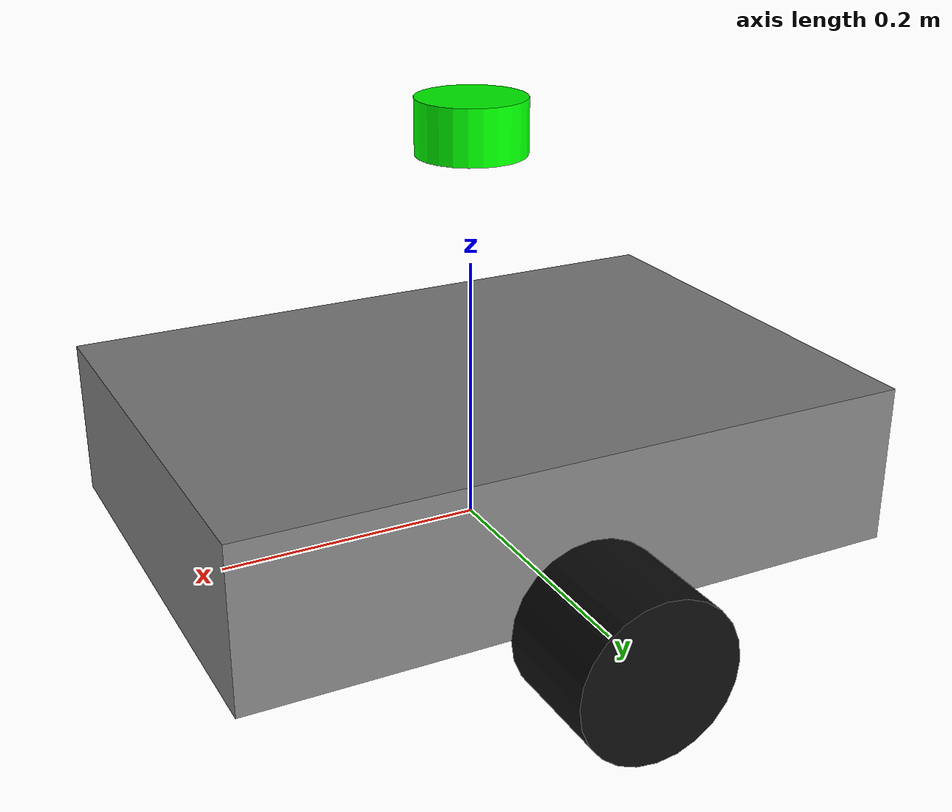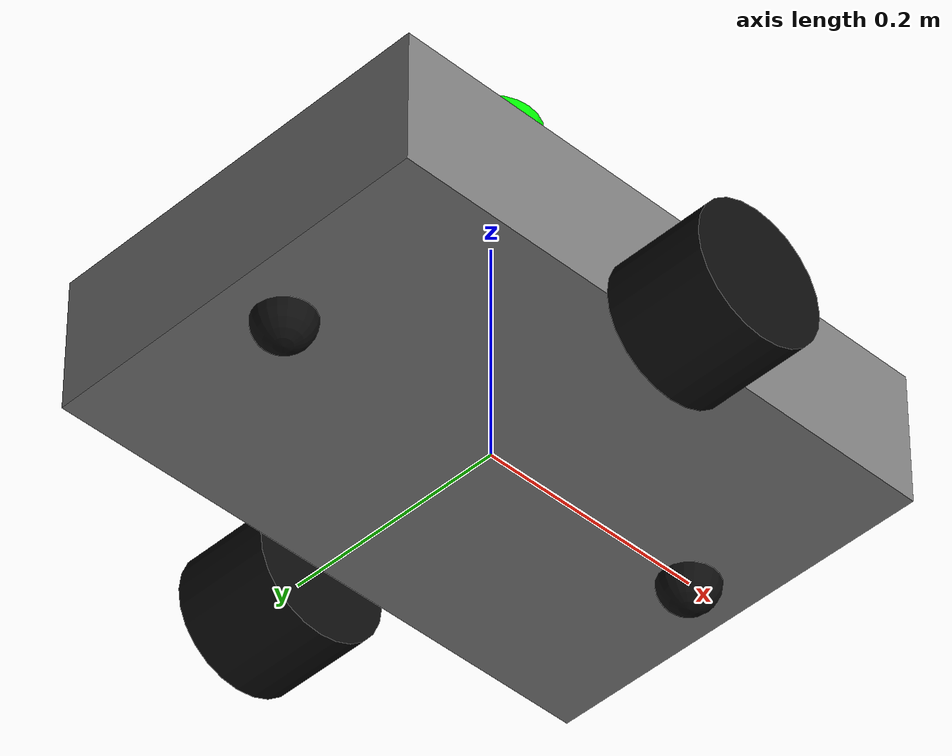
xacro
<?xml version="1.0"?>
<!--
  SLAM 机器人 URDF（借鉴 oomwoo-one 模块化设计）
  - params.xacro：参数
  - inertial.xacro：惯性宏
  - materials.xacro：材质
  - wheels.xacro：底盘 / 轮子宏
  - sensors.xacro：传感器宏
-->
<robot xmlns:xacro="http://ros.org/wiki/xacro" name="slam_robot">

  <!-- 加载子模块 -->
  <xacro:include filename="$(find indoor_slam_67m)/urdf/xacro/params.xacro"/>
  <xacro:include filename="$(find indoor_slam_67m)/urdf/xacro/materials.xacro"/>
  <xacro:include filename="$(find indoor_slam_67m)/urdf/xacro/inertial.xacro"/>
  <xacro:include filename="$(find indoor_slam_67m)/urdf/xacro/wheels.xacro"/>
  <xacro:include filename="$(find indoor_slam_67m)/urdf/xacro/sensors.xacro"/>

  <!-- 底盘主体 -->
  <xacro:base_body base_length="${base_length}"
                   base_width="${base_width}"
                   base_height="${base_height}"
                   base_mass="${base_mass}"/>

  <!-- 驱动轮 -->
  <xacro:drive_wheel side="left"  wheel_radius="${wheel_radius}" wheel_mass="${wheel_mass}" y_position="${base_width/2 + base_width/8}"/>
  <xacro:drive_wheel side="right" wheel_radius="${wheel_radius}" wheel_mass="${wheel_mass}" y_position="${-(base_width/2 + base_width/8)}"/>

  <!-- 万向轮（前 + 后） -->
  <xacro:caster_wheel position="front" caster_radius="${caster_radius}" x_position="${base_length/2 - 0.05}"/>
  <xacro:caster_wheel position="back"  caster_radius="${caster_radius}" x_position="${-(base_length/2 - 0.05)}"/>

  <!-- 传感器 -->
  <xacro:laser_sensor x="0" y="0" z="${laser_height}"/>
  <xacro:imu_sensor   x="0" y="0" z="${imu_height}"/>

</robot>

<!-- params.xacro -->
<!--
  所有几何 / 物理参数集中在这里
  借鉴 oomwoo-one 的设计
-->
<robot xmlns:xacro="http://ros.org/wiki/xacro">

  <!-- ===== 底盘尺寸 ===== -->
  <xacro:property name="base_length" value="0.50"/>      <!-- 底盘长 50 cm -->
  <xacro:property name="base_width" value="0.35"/>       <!-- 底盘宽 35 cm -->
  <xacro:property name="base_height" value="0.12"/>      <!-- 底盘高 12 cm -->
  <xacro:property name="base_mass" value="3.0"/>          <!-- 3 kg -->

  <!-- ===== 驱动轮 ===== -->
  <xacro:property name="wheel_radius" value="0.06"/>     <!-- 6 cm -->
  <xacro:property name="wheel_width" value="0.04"/>      <!-- 4 cm -->
  <xacro:property name="wheel_mass" value="0.2"/>

  <!-- ===== 万向轮 ===== -->
  <xacro:property name="caster_radius" value="0.025"/>   <!-- 2.5 cm -->

  <!-- ===== 雷达 / IMU 安装位置 ===== -->
  <xacro:property name="laser_height" value="0.30"/>     <!-- 雷达离地 30 cm -->
  <xacro:property name="imu_height" value="0.10"/>       <!-- IMU 离地 10 cm -->

  <!-- ===== bumper / safety 物理位置 ===== -->
  <xacro:property name="bumper_height" value="0.05"/>    <!-- bumper 高度 -->
  <xacro:property name="bumper_offset" value="${base_length/2 + 0.005}"/> <!-- bumper 在前/后底盘边缘 -->

  <!-- ===== 物理常量 ===== -->
  <xacro:property name="PI" value="3.14159265359"/>

</robot>

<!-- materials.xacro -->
<!-- 材质定义 -->
<robot xmlns:xacro="http://ros.org/wiki/xacro">

  <material name="gray">
    <color rgba="0.5 0.5 0.5 1"/>
  </material>

  <material name="black">
    <color rgba="0.05 0.05 0.05 1"/>
  </material>

  <material name="blue">
    <color rgba="0 0 1 1"/>
  </material>

  <material name="green">
    <color rgba="0 1 0 1"/>
  </material>

  <material name="red">
    <color rgba="1 0 0 1"/>
  </material>

  <material name="white">
    <color rgba="1 1 1 1"/>
  </material>

</robot>

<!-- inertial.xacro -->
<!--
  惯性参数宏（借鉴 oomwoo-one）
  提供 solid_box_inertia / solid_cylinder_inertia / solid_sphere_inertia
-->
<robot xmlns:xacro="http://ros.org/wiki/xacro">

  <!-- 实心长方体 -->
  <xacro:macro name="solid_box_inertia" params="m x y z">
    <inertial>
      <origin xyz="0 0 0" rpy="0 0 0"/>
      <mass value="${m}"/>
      <inertia ixx="${m*(y*y+z*z)/12}" ixy="0" ixz="0"
               iyy="${m*(x*x+z*z)/12}" iyz="0"
               izz="${m*(x*x+y*y)/12}"/>
    </inertial>
  </xacro:macro>

  <!-- 实心圆柱（轴向 = z） -->
  <xacro:macro name="solid_cylinder_inertia" params="m r h">
    <inertial>
      <origin xyz="0 0 0" rpy="0 0 0"/>
      <mass value="${m}"/>
      <inertia ixx="${m*(3*r*r+h*h)/12}" ixy="0" ixz="0"
               iyy="${m*(3*r*r+h*h)/12}" iyz="0"
               izz="${m*r*r/2}"/>
    </inertial>
  </xacro:macro>

  <!-- 实心球 -->
  <xacro:macro name="solid_sphere_inertia" params="m r">
    <inertial>
      <origin xyz="0 0 0" rpy="0 0 0"/>
      <mass value="${m}"/>
      <inertia ixx="${2*m*r*r/5}" ixy="0" ixz="0"
               iyy="${2*m*r*r/5}" iyz="0"
               izz="${2*m*r*r/5}"/>
    </inertial>
  </xacro:macro>

</robot>

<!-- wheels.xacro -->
<!-- 底盘 / 驱动轮 / 万向轮宏 -->
<robot xmlns:xacro="http://ros.org/wiki/xacro">

  <!-- 底盘主体（长方体） -->
  <xacro:macro name="base_body" params="base_length base_width base_height base_mass">
    <link name="base_link">
      <visual>
        <origin xyz="0 0 ${base_height/2}" rpy="0 0 0"/>
        <geometry>
          <box size="${base_length} ${base_width} ${base_height}"/>
        </geometry>
        <material name="gray"/>
      </visual>
      <collision>
        <origin xyz="0 0 ${base_height/2}" rpy="0 0 0"/>
        <geometry>
          <box size="${base_length} ${base_width} ${base_height}"/>
        </geometry>
      </collision>
      <xacro:solid_box_inertia m="${base_mass}" x="${base_length}" y="${base_width}" z="${base_height}"/>
    </link>
  </xacro:macro>

  <!-- 驱动轮（圆柱，轴向 = x） -->
  <xacro:macro name="drive_wheel" params="side wheel_radius wheel_mass y_position">
    <link name="wheel_${side}_link">
      <visual>
        <origin xyz="0 0 0" rpy="0 0 0"/>
        <geometry>
          <cylinder radius="${wheel_radius}" length="${base_width/4}"/>
        </geometry>
        <material name="black"/>
      </visual>
      <collision>
        <origin xyz="0 0 0" rpy="0 0 0"/>
        <geometry>
          <cylinder radius="${wheel_radius}" length="${base_width/4}"/>
        </geometry>
      </collision>
      <xacro:solid_cylinder_inertia m="${wheel_mass}" r="${wheel_radius}" h="${base_width/4}"/>
    </link>

    <joint name="wheel_${side}_joint" type="continuous">
      <parent link="base_link"/>
      <child link="wheel_${side}_link"/>
      <origin xyz="0 ${y_position} 0"
              rpy="-${PI/2} 0 0"/>
      <axis xyz="0 0 1"/>
      <dynamics damping="0.1" friction="0.1"/>
    </joint>
  </xacro:macro>

  <!-- 万向轮（球） -->
  <xacro:macro name="caster_wheel" params="position caster_radius x_position">
    <link name="caster_${position}_link">
      <visual>
        <origin xyz="0 0 0" rpy="0 0 0"/>
        <geometry>
          <sphere radius="${caster_radius}"/>
        </geometry>
        <material name="black"/>
      </visual>
      <collision>
        <origin xyz="0 0 0" rpy="0 0 0"/>
        <geometry>
          <sphere radius="${caster_radius}"/>
        </geometry>
      </collision>
      <xacro:solid_sphere_inertia m="0.05" r="${caster_radius}"/>
    </link>

    <joint name="caster_${position}_joint" type="fixed">
      <parent link="base_link"/>
      <child link="caster_${position}_link"/>
      <origin xyz="${x_position} 0 0" rpy="0 0 0"/>
    </joint>
  </xacro:macro>

</robot>

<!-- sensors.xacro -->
<!-- 传感器宏：雷达、IMU、bumper -->
<robot xmlns:xacro="http://ros.org/wiki/xacro">

  <!-- 2D 激光雷达 -->
  <xacro:macro name="laser_sensor" params="x y z">
    <link name="laser_frame">
      <visual>
        <origin xyz="0 0 0" rpy="0 0 0"/>
        <geometry>
          <cylinder radius="0.04" length="0.04"/>
        </geometry>
        <material name="green"/>
      </visual>
      <collision>
        <origin xyz="0 0 0" rpy="0 0 0"/>
        <geometry>
          <cylinder radius="0.04" length="0.04"/>
        </geometry>
      </collision>
      <xacro:solid_cylinder_inertia m="0.1" r="0.04" h="0.04"/>
    </link>

    <joint name="laser_joint" type="fixed">
      <parent link="base_link"/>
      <child link="laser_frame"/>
      <origin xyz="${x} ${y} ${z}" rpy="0 0 0"/>
    </joint>
  </xacro:macro>

  <!-- IMU -->
  <xacro:macro name="imu_sensor" params="x y z">
    <link name="imu_link">
      <visual>
        <origin xyz="0 0 0" rpy="0 0 0"/>
        <geometry>
          <box size="0.02 0.02 0.005"/>
        </geometry>
        <material name="blue"/>
      </visual>
      <collision>
        <origin xyz="0 0 0" rpy="0 0 0"/>
        <geometry>
          <box size="0.02 0.02 0.005"/>
        </geometry>
      </collision>
      <xacro:solid_box_inertia m="0.01" x="0.02" y="0.02" z="0.005"/>
    </link>

    <joint name="imu_joint" type="fixed">
      <parent link="base_link"/>
      <child link="imu_link"/>
      <origin xyz="${x} ${y} ${z}" rpy="0 0 0"/>
    </joint>
  </xacro:macro>

</robot>
